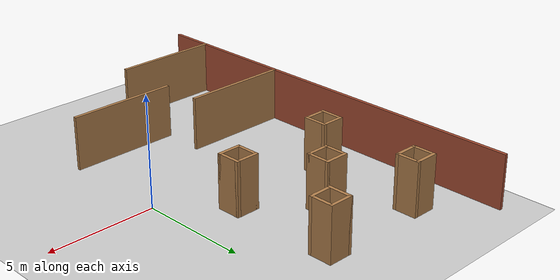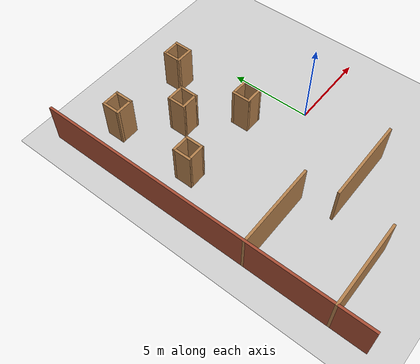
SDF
<sdf version="1.7">
 <world name="default">
  <model name="ground_plane">
   <static>1</static>
   <link name="link">
    <collision name="collision">
     <geometry><plane><normal>0 0 1</normal><size>100 100</size></plane></geometry>
     <surface>
      <contact><collide_bitmask>65535</collide_bitmask></contact>
      <friction><ode><mu>100</mu><mu2>50</mu2></ode></friction>
     </surface>
    </collision>
    <visual name="visual">
     <cast_shadows>0</cast_shadows>
     <geometry><plane><normal>0 0 1</normal><size>100 100</size></plane></geometry>
     <material>
      <script><uri>file://media/materials/scripts/gazebo.material</uri><name>Gazebo/Grey</name></script>
     </material>
    </visual>
   </link>
  </model>
  <model name="Room_Curriculum">
   <link name="Wall_18">
    <pose>-7.5 8 0 0 -0 0</pose>
    <visual name="Wall_18_Visual">
     <pose>0 0 1.25 0 -0 0</pose>
     <geometry><box><size>1.15 0.15 2.5</size></box></geometry>
     <material>
      <script><uri>file://media/materials/scripts/gazebo.material</uri><name>Gazebo/Wood</name></script>
      <ambient>1 1 1 1</ambient>
      <shader type="pixel"/>
     </material>
     <meta><layer>0</layer></meta>
    </visual>
    <collision name="Wall_18_Collision">
     <pose>0 0 1.25 0 -0 0</pose>
     <geometry><box><size>1.15 0.15 2.5</size></box></geometry>
     <surface>
      <friction>
       <ode><mu>1</mu><mu2>1</mu2><fdir1>0 0 0</fdir1><slip1>0</slip1><slip2>0</slip2></ode>
       <torsional>
        <coefficient>1</coefficient>
        <patch_radius>0</patch_radius>
        <surface_radius>0</surface_radius>
        <use_patch_radius>1</use_patch_radius>
        <ode><slip>0</slip></ode>
       </torsional>
      </friction>
      <bounce><restitution_coefficient>0</restitution_coefficient><threshold>1e+06</threshold></bounce>
      <contact>
       <collide_without_contact>0</collide_without_contact>
       <collide_without_contact_bitmask>1</collide_without_contact_bitmask>
       <collide_bitmask>1</collide_bitmask>
       <ode>
        <soft_cfm>0</soft_cfm>
        <soft_erp>0.2</soft_erp>
        <kp>1e+13</kp>
        <kd>1</kd>
        <max_vel>0.01</max_vel>
        <min_depth>0</min_depth>
       </ode>
       <bullet>
        <split_impulse>1</split_impulse>
        <split_impulse_penetration_threshold>-0.01</split_impulse_penetration_threshold>
        <soft_cfm>0</soft_cfm>
        <soft_erp>0.2</soft_erp>
        <kp>1e+13</kp>
        <kd>1</kd>
       </bullet>
      </contact>
     </surface>
    </collision>
   </link>
   <link name="Wall_19">
    <pose>-7 7.5 0 0 0 -1.5708</pose>
    <visual name="Wall_19_Visual">
     <pose>0 0 1.25 0 -0 0</pose>
     <geometry><box><size>1.15 0.15 2.5</size></box></geometry>
     <material>
      <script><uri>file://media/materials/scripts/gazebo.material</uri><name>Gazebo/Wood</name></script>
      <ambient>1 1 1 1</ambient>
      <shader type="pixel"/>
     </material>
     <meta><layer>0</layer></meta>
    </visual>
    <collision name="Wall_19_Collision">
     <pose>0 0 1.25 0 -0 0</pose>
     <geometry><box><size>1.15 0.15 2.5</size></box></geometry>
     <surface>
      <friction>
       <ode><mu>1</mu><mu2>1</mu2><fdir1>0 0 0</fdir1><slip1>0</slip1><slip2>0</slip2></ode>
       <torsional>
        <coefficient>1</coefficient>
        <patch_radius>0</patch_radius>
        <surface_radius>0</surface_radius>
        <use_patch_radius>1</use_patch_radius>
        <ode><slip>0</slip></ode>
       </torsional>
      </friction>
      <bounce><restitution_coefficient>0</restitution_coefficient><threshold>1e+06</threshold></bounce>
      <contact>
       <collide_without_contact>0</collide_without_contact>
       <collide_without_contact_bitmask>1</collide_without_contact_bitmask>
       <collide_bitmask>1</collide_bitmask>
       <ode>
        <soft_cfm>0</soft_cfm>
        <soft_erp>0.2</soft_erp>
        <kp>1e+13</kp>
        <kd>1</kd>
        <max_vel>0.01</max_vel>
        <min_depth>0</min_depth>
       </ode>
       <bullet>
        <split_impulse>1</split_impulse>
        <split_impulse_penetration_threshold>-0.01</split_impulse_penetration_threshold>
        <soft_cfm>0</soft_cfm>
        <soft_erp>0.2</soft_erp>
        <kp>1e+13</kp>
        <kd>1</kd>
       </bullet>
      </contact>
     </surface>
    </collision>
   </link>
   <link name="Wall_20">
    <pose>-7.5 7 0 0 -0 3.14159</pose>
    <visual name="Wall_20_Visual">
     <pose>0 0 1.25 0 -0 0</pose>
     <geometry><box><size>1.15 0.15 2.5</size></box></geometry>
     <material>
      <script><uri>file://media/materials/scripts/gazebo.material</uri><name>Gazebo/Wood</name></script>
      <ambient>1 1 1 1</ambient>
      <shader type="pixel"/>
     </material>
     <meta><layer>0</layer></meta>
    </visual>
    <collision name="Wall_20_Collision">
     <pose>0 0 1.25 0 -0 0</pose>
     <geometry><box><size>1.15 0.15 2.5</size></box></geometry>
     <surface>
      <friction>
       <ode><mu>1</mu><mu2>1</mu2><fdir1>0 0 0</fdir1><slip1>0</slip1><slip2>0</slip2></ode>
       <torsional>
        <coefficient>1</coefficient>
        <patch_radius>0</patch_radius>
        <surface_radius>0</surface_radius>
        <use_patch_radius>1</use_patch_radius>
        <ode><slip>0</slip></ode>
       </torsional>
      </friction>
      <bounce><restitution_coefficient>0</restitution_coefficient><threshold>1e+06</threshold></bounce>
      <contact>
       <collide_without_contact>0</collide_without_contact>
       <collide_without_contact_bitmask>1</collide_without_contact_bitmask>
       <collide_bitmask>1</collide_bitmask>
       <ode>
        <soft_cfm>0</soft_cfm>
        <soft_erp>0.2</soft_erp>
        <kp>1e+13</kp>
        <kd>1</kd>
        <max_vel>0.01</max_vel>
        <min_depth>0</min_depth>
       </ode>
       <bullet>
        <split_impulse>1</split_impulse>
        <split_impulse_penetration_threshold>-0.01</split_impulse_penetration_threshold>
        <soft_cfm>0</soft_cfm>
        <soft_erp>0.2</soft_erp>
        <kp>1e+13</kp>
        <kd>1</kd>
       </bullet>
      </contact>
     </surface>
    </collision>
   </link>
   <link name="Wall_21">
    <pose>-8 7.5 0 0 -0 1.5708</pose>
    <visual name="Wall_21_Visual">
     <pose>0 0 1.25 0 -0 0</pose>
     <geometry><box><size>1.15 0.15 2.5</size></box></geometry>
     <material>
      <script><uri>file://media/materials/scripts/gazebo.material</uri><name>Gazebo/Wood</name></script>
      <ambient>1 1 1 1</ambient>
      <shader type="pixel"/>
     </material>
     <meta><layer>0</layer></meta>
    </visual>
    <collision name="Wall_21_Collision">
     <pose>0 0 1.25 0 -0 0</pose>
     <geometry><box><size>1.15 0.15 2.5</size></box></geometry>
     <surface>
      <friction>
       <ode><mu>1</mu><mu2>1</mu2><fdir1>0 0 0</fdir1><slip1>0</slip1><slip2>0</slip2></ode>
       <torsional>
        <coefficient>1</coefficient>
        <patch_radius>0</patch_radius>
        <surface_radius>0</surface_radius>
        <use_patch_radius>1</use_patch_radius>
        <ode><slip>0</slip></ode>
       </torsional>
      </friction>
      <bounce><restitution_coefficient>0</restitution_coefficient><threshold>1e+06</threshold></bounce>
      <contact>
       <collide_without_contact>0</collide_without_contact>
       <collide_without_contact_bitmask>1</collide_without_contact_bitmask>
       <collide_bitmask>1</collide_bitmask>
       <ode>
        <soft_cfm>0</soft_cfm>
        <soft_erp>0.2</soft_erp>
        <kp>1e+13</kp>
        <kd>1</kd>
        <max_vel>0.01</max_vel>
        <min_depth>0</min_depth>
       </ode>
       <bullet>
        <split_impulse>1</split_impulse>
        <split_impulse_penetration_threshold>-0.01</split_impulse_penetration_threshold>
        <soft_cfm>0</soft_cfm>
        <soft_erp>0.2</soft_erp>
        <kp>1e+13</kp>
        <kd>1</kd>
       </bullet>
      </contact>
     </surface>
    </collision>
   </link>
   <link name="Wall_23">
    <pose>-5.5 5 0 0 0 -1.5708</pose>
    <visual name="Wall_23_Visual">
     <pose>0 0 1.25 0 -0 0</pose>
     <geometry><box><size>1.15 0.15 2.5</size></box></geometry>
     <material>
      <script><uri>file://media/materials/scripts/gazebo.material</uri><name>Gazebo/Wood</name></script>
      <ambient>1 1 1 1</ambient>
      <shader type="pixel"/>
     </material>
     <meta><layer>0</layer></meta>
    </visual>
    <collision name="Wall_23_Collision">
     <pose>0 0 1.25 0 -0 0</pose>
     <geometry><box><size>1.15 0.15 2.5</size></box></geometry>
     <surface>
      <friction>
       <ode><mu>1</mu><mu2>1</mu2><fdir1>0 0 0</fdir1><slip1>0</slip1><slip2>0</slip2></ode>
       <torsional>
        <coefficient>1</coefficient>
        <patch_radius>0</patch_radius>
        <surface_radius>0</surface_radius>
        <use_patch_radius>1</use_patch_radius>
        <ode><slip>0</slip></ode>
       </torsional>
      </friction>
      <bounce><restitution_coefficient>0</restitution_coefficient><threshold>1e+06</threshold></bounce>
      <contact>
       <collide_without_contact>0</collide_without_contact>
       <collide_without_contact_bitmask>1</collide_without_contact_bitmask>
       <collide_bitmask>1</collide_bitmask>
       <ode>
        <soft_cfm>0</soft_cfm>
        <soft_erp>0.2</soft_erp>
        <kp>1e+13</kp>
        <kd>1</kd>
        <max_vel>0.01</max_vel>
        <min_depth>0</min_depth>
       </ode>
       <bullet>
        <split_impulse>1</split_impulse>
        <split_impulse_penetration_threshold>-0.01</split_impulse_penetration_threshold>
        <soft_cfm>0</soft_cfm>
        <soft_erp>0.2</soft_erp>
        <kp>1e+13</kp>
        <kd>1</kd>
       </bullet>
      </contact>
     </surface>
    </collision>
   </link>
   <link name="Wall_24">
    <pose>-5 4.5 0 0 -0 0</pose>
    <visual name="Wall_24_Visual">
     <pose>0 0 1.25 0 -0 0</pose>
     <geometry><box><size>1.15 0.15 2.5</size></box></geometry>
     <material>
      <script><uri>file://media/materials/scripts/gazebo.material</uri><name>Gazebo/Wood</name></script>
      <ambient>1 1 1 1</ambient>
      <shader type="pixel"/>
     </material>
     <meta><layer>0</layer></meta>
    </visual>
    <collision name="Wall_24_Collision">
     <pose>0 0 1.25 0 -0 0</pose>
     <geometry><box><size>1.15 0.15 2.5</size></box></geometry>
     <surface>
      <friction>
       <ode><mu>1</mu><mu2>1</mu2><fdir1>0 0 0</fdir1><slip1>0</slip1><slip2>0</slip2></ode>
       <torsional>
        <coefficient>1</coefficient>
        <patch_radius>0</patch_radius>
        <surface_radius>0</surface_radius>
        <use_patch_radius>1</use_patch_radius>
        <ode><slip>0</slip></ode>
       </torsional>
      </friction>
      <bounce><restitution_coefficient>0</restitution_coefficient><threshold>1e+06</threshold></bounce>
      <contact>
       <collide_without_contact>0</collide_without_contact>
       <collide_without_contact_bitmask>1</collide_without_contact_bitmask>
       <collide_bitmask>1</collide_bitmask>
       <ode>
        <soft_cfm>0</soft_cfm>
        <soft_erp>0.2</soft_erp>
        <kp>1e+13</kp>
        <kd>1</kd>
        <max_vel>0.01</max_vel>
        <min_depth>0</min_depth>
       </ode>
       <bullet>
        <split_impulse>1</split_impulse>
        <split_impulse_penetration_threshold>-0.01</split_impulse_penetration_threshold>
        <soft_cfm>0</soft_cfm>
        <soft_erp>0.2</soft_erp>
        <kp>1e+13</kp>
        <kd>1</kd>
       </bullet>
      </contact>
     </surface>
    </collision>
   </link>
   <link name="Wall_25">
    <pose>-4.5 5 0 0 -0 1.5708</pose>
    <visual name="Wall_25_Visual">
     <pose>0 0 1.25 0 -0 0</pose>
     <geometry><box><size>1.15 0.15 2.5</size></box></geometry>
     <material>
      <script><uri>file://media/materials/scripts/gazebo.material</uri><name>Gazebo/Wood</name></script>
      <ambient>1 1 1 1</ambient>
      <shader type="pixel"/>
     </material>
     <meta><layer>0</layer></meta>
    </visual>
    <collision name="Wall_25_Collision">
     <pose>0 0 1.25 0 -0 0</pose>
     <geometry><box><size>1.15 0.15 2.5</size></box></geometry>
     <surface>
      <friction>
       <ode><mu>1</mu><mu2>1</mu2><fdir1>0 0 0</fdir1><slip1>0</slip1><slip2>0</slip2></ode>
       <torsional>
        <coefficient>1</coefficient>
        <patch_radius>0</patch_radius>
        <surface_radius>0</surface_radius>
        <use_patch_radius>1</use_patch_radius>
        <ode><slip>0</slip></ode>
       </torsional>
      </friction>
      <bounce><restitution_coefficient>0</restitution_coefficient><threshold>1e+06</threshold></bounce>
      <contact>
       <collide_without_contact>0</collide_without_contact>
       <collide_without_contact_bitmask>1</collide_without_contact_bitmask>
       <collide_bitmask>1</collide_bitmask>
       <ode>
        <soft_cfm>0</soft_cfm>
        <soft_erp>0.2</soft_erp>
        <kp>1e+13</kp>
        <kd>1</kd>
        <max_vel>0.01</max_vel>
        <min_depth>0</min_depth>
       </ode>
       <bullet>
        <split_impulse>1</split_impulse>
        <split_impulse_penetration_threshold>-0.01</split_impulse_penetration_threshold>
        <soft_cfm>0</soft_cfm>
        <soft_erp>0.2</soft_erp>
        <kp>1e+13</kp>
        <kd>1</kd>
       </bullet>
      </contact>
     </surface>
    </collision>
   </link>
   <link name="Wall_26">
    <pose>-5 5.5 0 0 -0 3.14159</pose>
    <visual name="Wall_26_Visual">
     <pose>0 0 1.25 0 -0 0</pose>
     <geometry><box><size>1.15 0.15 2.5</size></box></geometry>
     <material>
      <script><uri>file://media/materials/scripts/gazebo.material</uri><name>Gazebo/Wood</name></script>
      <ambient>1 1 1 1</ambient>
      <shader type="pixel"/>
     </material>
     <meta><layer>0</layer></meta>
    </visual>
    <collision name="Wall_26_Collision">
     <pose>0 0 1.25 0 -0 0</pose>
     <geometry><box><size>1.15 0.15 2.5</size></box></geometry>
     <surface>
      <friction>
       <ode><mu>1</mu><mu2>1</mu2><fdir1>0 0 0</fdir1><slip1>0</slip1><slip2>0</slip2></ode>
       <torsional>
        <coefficient>1</coefficient>
        <patch_radius>0</patch_radius>
        <surface_radius>0</surface_radius>
        <use_patch_radius>1</use_patch_radius>
        <ode><slip>0</slip></ode>
       </torsional>
      </friction>
      <bounce><restitution_coefficient>0</restitution_coefficient><threshold>1e+06</threshold></bounce>
      <contact>
       <collide_without_contact>0</collide_without_contact>
       <collide_without_contact_bitmask>1</collide_without_contact_bitmask>
       <collide_bitmask>1</collide_bitmask>
       <ode>
        <soft_cfm>0</soft_cfm>
        <soft_erp>0.2</soft_erp>
        <kp>1e+13</kp>
        <kd>1</kd>
        <max_vel>0.01</max_vel>
        <min_depth>0</min_depth>
       </ode>
       <bullet>
        <split_impulse>1</split_impulse>
        <split_impulse_penetration_threshold>-0.01</split_impulse_penetration_threshold>
        <soft_cfm>0</soft_cfm>
        <soft_erp>0.2</soft_erp>
        <kp>1e+13</kp>
        <kd>1</kd>
       </bullet>
      </contact>
     </surface>
    </collision>
   </link>
   <link name="Wall_28">
    <pose>-2.5 8 0 0 -0 0</pose>
    <visual name="Wall_28_Visual">
     <pose>0 0 1.25 0 -0 0</pose>
     <geometry><box><size>1.15 0.15 2.5</size></box></geometry>
     <material>
      <script><uri>file://media/materials/scripts/gazebo.material</uri><name>Gazebo/Wood</name></script>
      <ambient>1 1 1 1</ambient>
      <shader type="pixel"/>
     </material>
     <meta><layer>0</layer></meta>
    </visual>
    <collision name="Wall_28_Collision">
     <pose>0 0 1.25 0 -0 0</pose>
     <geometry><box><size>1.15 0.15 2.5</size></box></geometry>
     <surface>
      <friction>
       <ode><mu>1</mu><mu2>1</mu2><fdir1>0 0 0</fdir1><slip1>0</slip1><slip2>0</slip2></ode>
       <torsional>
        <coefficient>1</coefficient>
        <patch_radius>0</patch_radius>
        <surface_radius>0</surface_radius>
        <use_patch_radius>1</use_patch_radius>
        <ode><slip>0</slip></ode>
       </torsional>
      </friction>
      <bounce><restitution_coefficient>0</restitution_coefficient><threshold>1e+06</threshold></bounce>
      <contact>
       <collide_without_contact>0</collide_without_contact>
       <collide_without_contact_bitmask>1</collide_without_contact_bitmask>
       <collide_bitmask>1</collide_bitmask>
       <ode>
        <soft_cfm>0</soft_cfm>
        <soft_erp>0.2</soft_erp>
        <kp>1e+13</kp>
        <kd>1</kd>
        <max_vel>0.01</max_vel>
        <min_depth>0</min_depth>
       </ode>
       <bullet>
        <split_impulse>1</split_impulse>
        <split_impulse_penetration_threshold>-0.01</split_impulse_penetration_threshold>
        <soft_cfm>0</soft_cfm>
        <soft_erp>0.2</soft_erp>
        <kp>1e+13</kp>
        <kd>1</kd>
       </bullet>
      </contact>
     </surface>
    </collision>
   </link>
   <link name="Wall_29">
    <pose>-2 7.5 0 0 0 -1.5708</pose>
    <visual name="Wall_29_Visual">
     <pose>0 0 1.25 0 -0 0</pose>
     <geometry><box><size>1.15 0.15 2.5</size></box></geometry>
     <material>
      <script><uri>file://media/materials/scripts/gazebo.material</uri><name>Gazebo/Wood</name></script>
      <ambient>1 1 1 1</ambient>
      <shader type="pixel"/>
     </material>
     <meta><layer>0</layer></meta>
    </visual>
    <collision name="Wall_29_Collision">
     <pose>0 0 1.25 0 -0 0</pose>
     <geometry><box><size>1.15 0.15 2.5</size></box></geometry>
     <surface>
      <friction>
       <ode><mu>1</mu><mu2>1</mu2><fdir1>0 0 0</fdir1><slip1>0</slip1><slip2>0</slip2></ode>
       <torsional>
        <coefficient>1</coefficient>
        <patch_radius>0</patch_radius>
        <surface_radius>0</surface_radius>
        <use_patch_radius>1</use_patch_radius>
        <ode><slip>0</slip></ode>
       </torsional>
      </friction>
      <bounce><restitution_coefficient>0</restitution_coefficient><threshold>1e+06</threshold></bounce>
      <contact>
       <collide_without_contact>0</collide_without_contact>
       <collide_without_contact_bitmask>1</collide_without_contact_bitmask>
       <collide_bitmask>1</collide_bitmask>
       <ode>
        <soft_cfm>0</soft_cfm>
        <soft_erp>0.2</soft_erp>
        <kp>1e+13</kp>
        <kd>1</kd>
        <max_vel>0.01</max_vel>
        <min_depth>0</min_depth>
       </ode>
       <bullet>
        <split_impulse>1</split_impulse>
        <split_impulse_penetration_threshold>-0.01</split_impulse_penetration_threshold>
        <soft_cfm>0</soft_cfm>
        <soft_erp>0.2</soft_erp>
        <kp>1e+13</kp>
        <kd>1</kd>
       </bullet>
      </contact>
     </surface>
    </collision>
   </link>
   <link name="Wall_3">
    <pose>-10 0 0 0 -0 1.5708</pose>
    <visual name="Wall_3_Visual">
     <pose>0 0 1.25 0 -0 0</pose>
     <geometry><box><size>20.15 0.15 2.5</size></box></geometry>
     <material>
      <script><uri>file://media/materials/scripts/gazebo.material</uri><name>Gazebo/Bricks</name></script>
      <ambient>1 1 1 1</ambient>
      <shader type="pixel"/>
     </material>
     <meta><layer>0</layer></meta>
    </visual>
    <collision name="Wall_3_Collision">
     <pose>0 0 1.25 0 -0 0</pose>
     <geometry><box><size>20.15 0.15 2.5</size></box></geometry>
     <surface>
      <friction>
       <ode><mu>1</mu><mu2>1</mu2><fdir1>0 0 0</fdir1><slip1>0</slip1><slip2>0</slip2></ode>
       <torsional>
        <coefficient>1</coefficient>
        <patch_radius>0</patch_radius>
        <surface_radius>0</surface_radius>
        <use_patch_radius>1</use_patch_radius>
        <ode><slip>0</slip></ode>
       </torsional>
      </friction>
      <bounce><restitution_coefficient>0</restitution_coefficient><threshold>1e+06</threshold></bounce>
      <contact>
       <collide_without_contact>0</collide_without_contact>
       <collide_without_contact_bitmask>1</collide_without_contact_bitmask>
       <collide_bitmask>1</collide_bitmask>
       <ode>
        <soft_cfm>0</soft_cfm>
        <soft_erp>0.2</soft_erp>
        <kp>1e+13</kp>
        <kd>1</kd>
        <max_vel>0.01</max_vel>
        <min_depth>0</min_depth>
       </ode>
       <bullet>
        <split_impulse>1</split_impulse>
        <split_impulse_penetration_threshold>-0.01</split_impulse_penetration_threshold>
        <soft_cfm>0</soft_cfm>
        <soft_erp>0.2</soft_erp>
        <kp>1e+13</kp>
        <kd>1</kd>
       </bullet>
      </contact>
     </surface>
    </collision>
   </link>
   <link name="Wall_30">
    <pose>-2.5 7 0 0 -0 3.14159</pose>
    <visual name="Wall_30_Visual">
     <pose>0 0 1.25 0 -0 0</pose>
     <geometry><box><size>1.15 0.15 2.5</size></box></geometry>
     <material>
      <script><uri>file://media/materials/scripts/gazebo.material</uri><name>Gazebo/Wood</name></script>
      <ambient>1 1 1 1</ambient>
      <shader type="pixel"/>
     </material>
     <meta><layer>0</layer></meta>
    </visual>
    <collision name="Wall_30_Collision">
     <pose>0 0 1.25 0 -0 0</pose>
     <geometry><box><size>1.15 0.15 2.5</size></box></geometry>
     <surface>
      <friction>
       <ode><mu>1</mu><mu2>1</mu2><fdir1>0 0 0</fdir1><slip1>0</slip1><slip2>0</slip2></ode>
       <torsional>
        <coefficient>1</coefficient>
        <patch_radius>0</patch_radius>
        <surface_radius>0</surface_radius>
        <use_patch_radius>1</use_patch_radius>
        <ode><slip>0</slip></ode>
       </torsional>
      </friction>
      <bounce><restitution_coefficient>0</restitution_coefficient><threshold>1e+06</threshold></bounce>
      <contact>
       <collide_without_contact>0</collide_without_contact>
       <collide_without_contact_bitmask>1</collide_without_contact_bitmask>
       <collide_bitmask>1</collide_bitmask>
       <ode>
        <soft_cfm>0</soft_cfm>
        <soft_erp>0.2</soft_erp>
        <kp>1e+13</kp>
        <kd>1</kd>
        <max_vel>0.01</max_vel>
        <min_depth>0</min_depth>
       </ode>
       <bullet>
        <split_impulse>1</split_impulse>
        <split_impulse_penetration_threshold>-0.01</split_impulse_penetration_threshold>
        <soft_cfm>0</soft_cfm>
        <soft_erp>0.2</soft_erp>
        <kp>1e+13</kp>
        <kd>1</kd>
       </bullet>
      </contact>
     </surface>
    </collision>
   </link>
   <link name="Wall_31">
    <pose>-3 7.5 0 0 -0 1.5708</pose>
    <visual name="Wall_31_Visual">
     <pose>0 0 1.25 0 -0 0</pose>
     <geometry><box><size>1.15 0.15 2.5</size></box></geometry>
     <material>
      <script><uri>file://media/materials/scripts/gazebo.material</uri><name>Gazebo/Wood</name></script>
      <ambient>1 1 1 1</ambient>
      <shader type="pixel"/>
     </material>
     <meta><layer>0</layer></meta>
    </visual>
    <collision name="Wall_31_Collision">
     <pose>0 0 1.25 0 -0 0</pose>
     <geometry><box><size>1.15 0.15 2.5</size></box></geometry>
     <surface>
      <friction>
       <ode><mu>1</mu><mu2>1</mu2><fdir1>0 0 0</fdir1><slip1>0</slip1><slip2>0</slip2></ode>
       <torsional>
        <coefficient>1</coefficient>
        <patch_radius>0</patch_radius>
        <surface_radius>0</surface_radius>
        <use_patch_radius>1</use_patch_radius>
        <ode><slip>0</slip></ode>
       </torsional>
      </friction>
      <bounce><restitution_coefficient>0</restitution_coefficient><threshold>1e+06</threshold></bounce>
      <contact>
       <collide_without_contact>0</collide_without_contact>
       <collide_without_contact_bitmask>1</collide_without_contact_bitmask>
       <collide_bitmask>1</collide_bitmask>
       <ode>
        <soft_cfm>0</soft_cfm>
        <soft_erp>0.2</soft_erp>
        <kp>1e+13</kp>
        <kd>1</kd>
        <max_vel>0.01</max_vel>
        <min_depth>0</min_depth>
       </ode>
       <bullet>
        <split_impulse>1</split_impulse>
        <split_impulse_penetration_threshold>-0.01</split_impulse_penetration_threshold>
        <soft_cfm>0</soft_cfm>
        <soft_erp>0.2</soft_erp>
        <kp>1e+13</kp>
        <kd>1</kd>
       </bullet>
      </contact>
     </surface>
    </collision>
   </link>
   <link name="Wall_33">
    <pose>-8 2.5 0 0 0 -1.5708</pose>
    <visual name="Wall_33_Visual">
     <pose>0 0 1.25 0 -0 0</pose>
     <geometry><box><size>1.15 0.15 2.5</size></box></geometry>
     <material>
      <script><uri>file://media/materials/scripts/gazebo.material</uri><name>Gazebo/Wood</name></script>
      <ambient>1 1 1 1</ambient>
      <shader type="pixel"/>
     </material>
     <meta><layer>0</layer></meta>
    </visual>
    <collision name="Wall_33_Collision">
     <pose>0 0 1.25 0 -0 0</pose>
     <geometry><box><size>1.15 0.15 2.5</size></box></geometry>
     <surface>
      <friction>
       <ode><mu>1</mu><mu2>1</mu2><fdir1>0 0 0</fdir1><slip1>0</slip1><slip2>0</slip2></ode>
       <torsional>
        <coefficient>1</coefficient>
        <patch_radius>0</patch_radius>
        <surface_radius>0</surface_radius>
        <use_patch_radius>1</use_patch_radius>
        <ode><slip>0</slip></ode>
       </torsional>
      </friction>
      <bounce><restitution_coefficient>0</restitution_coefficient><threshold>1e+06</threshold></bounce>
      <contact>
       <collide_without_contact>0</collide_without_contact>
       <collide_without_contact_bitmask>1</collide_without_contact_bitmask>
       <collide_bitmask>1</collide_bitmask>
       <ode>
        <soft_cfm>0</soft_cfm>
        <soft_erp>0.2</soft_erp>
        <kp>1e+13</kp>
        <kd>1</kd>
        <max_vel>0.01</max_vel>
        <min_depth>0</min_depth>
       </ode>
       <bullet>
        <split_impulse>1</split_impulse>
        <split_impulse_penetration_threshold>-0.01</split_impulse_penetration_threshold>
        <soft_cfm>0</soft_cfm>
        <soft_erp>0.2</soft_erp>
        <kp>1e+13</kp>
        <kd>1</kd>
       </bullet>
      </contact>
     </surface>
    </collision>
   </link>
   <link name="Wall_34">
    <pose>-7.5 2 0 0 -0 0</pose>
    <visual name="Wall_34_Visual">
     <pose>0 0 1.25 0 -0 0</pose>
     <geometry><box><size>1.15 0.15 2.5</size></box></geometry>
     <material>
      <script><uri>file://media/materials/scripts/gazebo.material</uri><name>Gazebo/Wood</name></script>
      <ambient>1 1 1 1</ambient>
      <shader type="pixel"/>
     </material>
     <meta><layer>0</layer></meta>
    </visual>
    <collision name="Wall_34_Collision">
     <pose>0 0 1.25 0 -0 0</pose>
     <geometry><box><size>1.15 0.15 2.5</size></box></geometry>
     <surface>
      <friction>
       <ode><mu>1</mu><mu2>1</mu2><fdir1>0 0 0</fdir1><slip1>0</slip1><slip2>0</slip2></ode>
       <torsional>
        <coefficient>1</coefficient>
        <patch_radius>0</patch_radius>
        <surface_radius>0</surface_radius>
        <use_patch_radius>1</use_patch_radius>
        <ode><slip>0</slip></ode>
       </torsional>
      </friction>
      <bounce><restitution_coefficient>0</restitution_coefficient><threshold>1e+06</threshold></bounce>
      <contact>
       <collide_without_contact>0</collide_without_contact>
       <collide_without_contact_bitmask>1</collide_without_contact_bitmask>
       <collide_bitmask>1</collide_bitmask>
       <ode>
        <soft_cfm>0</soft_cfm>
        <soft_erp>0.2</soft_erp>
        <kp>1e+13</kp>
        <kd>1</kd>
        <max_vel>0.01</max_vel>
        <min_depth>0</min_depth>
       </ode>
       <bullet>
        <split_impulse>1</split_impulse>
        <split_impulse_penetration_threshold>-0.01</split_impulse_penetration_threshold>
        <soft_cfm>0</soft_cfm>
        <soft_erp>0.2</soft_erp>
        <kp>1e+13</kp>
        <kd>1</kd>
       </bullet>
      </contact>
     </surface>
    </collision>
   </link>
   <link name="Wall_35">
    <pose>-7 2.5 0 0 -0 1.5708</pose>
    <visual name="Wall_35_Visual">
     <pose>0 0 1.25 0 -0 0</pose>
     <geometry><box><size>1.15 0.15 2.5</size></box></geometry>
     <material>
      <script><uri>file://media/materials/scripts/gazebo.material</uri><name>Gazebo/Wood</name></script>
      <ambient>1 1 1 1</ambient>
      <shader type="pixel"/>
     </material>
     <meta><layer>0</layer></meta>
    </visual>
    <collision name="Wall_35_Collision">
     <pose>0 0 1.25 0 -0 0</pose>
     <geometry><box><size>1.15 0.15 2.5</size></box></geometry>
     <surface>
      <friction>
       <ode><mu>1</mu><mu2>1</mu2><fdir1>0 0 0</fdir1><slip1>0</slip1><slip2>0</slip2></ode>
       <torsional>
        <coefficient>1</coefficient>
        <patch_radius>0</patch_radius>
        <surface_radius>0</surface_radius>
        <use_patch_radius>1</use_patch_radius>
        <ode><slip>0</slip></ode>
       </torsional>
      </friction>
      <bounce><restitution_coefficient>0</restitution_coefficient><threshold>1e+06</threshold></bounce>
      <contact>
       <collide_without_contact>0</collide_without_contact>
       <collide_without_contact_bitmask>1</collide_without_contact_bitmask>
       <collide_bitmask>1</collide_bitmask>
       <ode>
        <soft_cfm>0</soft_cfm>
        <soft_erp>0.2</soft_erp>
        <kp>1e+13</kp>
        <kd>1</kd>
        <max_vel>0.01</max_vel>
        <min_depth>0</min_depth>
       </ode>
       <bullet>
        <split_impulse>1</split_impulse>
        <split_impulse_penetration_threshold>-0.01</split_impulse_penetration_threshold>
        <soft_cfm>0</soft_cfm>
        <soft_erp>0.2</soft_erp>
        <kp>1e+13</kp>
        <kd>1</kd>
       </bullet>
      </contact>
     </surface>
    </collision>
   </link>
   <link name="Wall_36">
    <pose>-7.5 3 0 0 -0 3.14159</pose>
    <visual name="Wall_36_Visual">
     <pose>0 0 1.25 0 -0 0</pose>
     <geometry><box><size>1.15 0.15 2.5</size></box></geometry>
     <material>
      <script><uri>file://media/materials/scripts/gazebo.material</uri><name>Gazebo/Wood</name></script>
      <ambient>1 1 1 1</ambient>
      <shader type="pixel"/>
     </material>
     <meta><layer>0</layer></meta>
    </visual>
    <collision name="Wall_36_Collision">
     <pose>0 0 1.25 0 -0 0</pose>
     <geometry><box><size>1.15 0.15 2.5</size></box></geometry>
     <surface>
      <friction>
       <ode><mu>1</mu><mu2>1</mu2><fdir1>0 0 0</fdir1><slip1>0</slip1><slip2>0</slip2></ode>
       <torsional>
        <coefficient>1</coefficient>
        <patch_radius>0</patch_radius>
        <surface_radius>0</surface_radius>
        <use_patch_radius>1</use_patch_radius>
        <ode><slip>0</slip></ode>
       </torsional>
      </friction>
      <bounce><restitution_coefficient>0</restitution_coefficient><threshold>1e+06</threshold></bounce>
      <contact>
       <collide_without_contact>0</collide_without_contact>
       <collide_without_contact_bitmask>1</collide_without_contact_bitmask>
       <collide_bitmask>1</collide_bitmask>
       <ode>
        <soft_cfm>0</soft_cfm>
        <soft_erp>0.2</soft_erp>
        <kp>1e+13</kp>
        <kd>1</kd>
        <max_vel>0.01</max_vel>
        <min_depth>0</min_depth>
       </ode>
       <bullet>
        <split_impulse>1</split_impulse>
        <split_impulse_penetration_threshold>-0.01</split_impulse_penetration_threshold>
        <soft_cfm>0</soft_cfm>
        <soft_erp>0.2</soft_erp>
        <kp>1e+13</kp>
        <kd>1</kd>
       </bullet>
      </contact>
     </surface>
    </collision>
   </link>
   <link name="Wall_38">
    <pose>-3 2.5 0 0 0 -1.5708</pose>
    <visual name="Wall_38_Visual">
     <pose>0 0 1.25 0 -0 0</pose>
     <geometry><box><size>1.15 0.15 2.5</size></box></geometry>
     <material>
      <script><uri>file://media/materials/scripts/gazebo.material</uri><name>Gazebo/Wood</name></script>
      <ambient>1 1 1 1</ambient>
      <shader type="pixel"/>
     </material>
     <meta><layer>0</layer></meta>
    </visual>
    <collision name="Wall_38_Collision">
     <pose>0 0 1.25 0 -0 0</pose>
     <geometry><box><size>1.15 0.15 2.5</size></box></geometry>
     <surface>
      <friction>
       <ode><mu>1</mu><mu2>1</mu2><fdir1>0 0 0</fdir1><slip1>0</slip1><slip2>0</slip2></ode>
       <torsional>
        <coefficient>1</coefficient>
        <patch_radius>0</patch_radius>
        <surface_radius>0</surface_radius>
        <use_patch_radius>1</use_patch_radius>
        <ode><slip>0</slip></ode>
       </torsional>
      </friction>
      <bounce><restitution_coefficient>0</restitution_coefficient><threshold>1e+06</threshold></bounce>
      <contact>
       <collide_without_contact>0</collide_without_contact>
       <collide_without_contact_bitmask>1</collide_without_contact_bitmask>
       <collide_bitmask>1</collide_bitmask>
       <ode>
        <soft_cfm>0</soft_cfm>
        <soft_erp>0.2</soft_erp>
        <kp>1e+13</kp>
        <kd>1</kd>
        <max_vel>0.01</max_vel>
        <min_depth>0</min_depth>
       </ode>
       <bullet>
        <split_impulse>1</split_impulse>
        <split_impulse_penetration_threshold>-0.01</split_impulse_penetration_threshold>
        <soft_cfm>0</soft_cfm>
        <soft_erp>0.2</soft_erp>
        <kp>1e+13</kp>
        <kd>1</kd>
       </bullet>
      </contact>
     </surface>
    </collision>
   </link>
   <link name="Wall_39">
    <pose>-2.5 2 0 0 -0 0</pose>
    <visual name="Wall_39_Visual">
     <pose>0 0 1.25 0 -0 0</pose>
     <geometry><box><size>1.15 0.15 2.5</size></box></geometry>
     <material>
      <script><uri>file://media/materials/scripts/gazebo.material</uri><name>Gazebo/Wood</name></script>
      <ambient>1 1 1 1</ambient>
      <shader type="pixel"/>
     </material>
     <meta><layer>0</layer></meta>
    </visual>
    <collision name="Wall_39_Collision">
     <pose>0 0 1.25 0 -0 0</pose>
     <geometry><box><size>1.15 0.15 2.5</size></box></geometry>
     <surface>
      <friction>
       <ode><mu>1</mu><mu2>1</mu2><fdir1>0 0 0</fdir1><slip1>0</slip1><slip2>0</slip2></ode>
       <torsional>
        <coefficient>1</coefficient>
        <patch_radius>0</patch_radius>
        <surface_radius>0</surface_radius>
        <use_patch_radius>1</use_patch_radius>
        <ode><slip>0</slip></ode>
       </torsional>
      </friction>
      <bounce><restitution_coefficient>0</restitution_coefficient><threshold>1e+06</threshold></bounce>
      <contact>
       <collide_without_contact>0</collide_without_contact>
       <collide_without_contact_bitmask>1</collide_without_contact_bitmask>
       <collide_bitmask>1</collide_bitmask>
       <ode>
        <soft_cfm>0</soft_cfm>
        <soft_erp>0.2</soft_erp>
        <kp>1e+13</kp>
        <kd>1</kd>
        <max_vel>0.01</max_vel>
        <min_depth>0</min_depth>
       </ode>
       <bullet>
        <split_impulse>1</split_impulse>
        <split_impulse_penetration_threshold>-0.01</split_impulse_penetration_threshold>
        <soft_cfm>0</soft_cfm>
        <soft_erp>0.2</soft_erp>
        <kp>1e+13</kp>
        <kd>1</kd>
       </bullet>
      </contact>
     </surface>
    </collision>
   </link>
   <link name="Wall_40">
    <pose>-2 2.5 0 0 -0 1.5708</pose>
    <visual name="Wall_40_Visual">
     <pose>0 0 1.25 0 -0 0</pose>
     <geometry><box><size>1.15 0.15 2.5</size></box></geometry>
     <material>
      <script><uri>file://media/materials/scripts/gazebo.material</uri><name>Gazebo/Wood</name></script>
      <ambient>1 1 1 1</ambient>
      <shader type="pixel"/>
     </material>
     <meta><layer>0</layer></meta>
    </visual>
    <collision name="Wall_40_Collision">
     <pose>0 0 1.25 0 -0 0</pose>
     <geometry><box><size>1.15 0.15 2.5</size></box></geometry>
     <surface>
      <friction>
       <ode><mu>1</mu><mu2>1</mu2><fdir1>0 0 0</fdir1><slip1>0</slip1><slip2>0</slip2></ode>
       <torsional>
        <coefficient>1</coefficient>
        <patch_radius>0</patch_radius>
        <surface_radius>0</surface_radius>
        <use_patch_radius>1</use_patch_radius>
        <ode><slip>0</slip></ode>
       </torsional>
      </friction>
      <bounce><restitution_coefficient>0</restitution_coefficient><threshold>1e+06</threshold></bounce>
      <contact>
       <collide_without_contact>0</collide_without_contact>
       <collide_without_contact_bitmask>1</collide_without_contact_bitmask>
       <collide_bitmask>1</collide_bitmask>
       <ode>
        <soft_cfm>0</soft_cfm>
        <soft_erp>0.2</soft_erp>
        <kp>1e+13</kp>
        <kd>1</kd>
        <max_vel>0.01</max_vel>
        <min_depth>0</min_depth>
       </ode>
       <bullet>
        <split_impulse>1</split_impulse>
        <split_impulse_penetration_threshold>-0.01</split_impulse_penetration_threshold>
        <soft_cfm>0</soft_cfm>
        <soft_erp>0.2</soft_erp>
        <kp>1e+13</kp>
        <kd>1</kd>
       </bullet>
      </contact>
     </surface>
    </collision>
   </link>
   <link name="Wall_41">
    <pose>-2.5 3 0 0 -0 3.14159</pose>
    <visual name="Wall_41_Visual">
     <pose>0 0 1.25 0 -0 0</pose>
     <geometry><box><size>1.15 0.15 2.5</size></box></geometry>
     <material>
      <script><uri>file://media/materials/scripts/gazebo.material</uri><name>Gazebo/Wood</name></script>
      <ambient>1 1 1 1</ambient>
      <shader type="pixel"/>
     </material>
     <meta><layer>0</layer></meta>
    </visual>
    <collision name="Wall_41_Collision">
     <pose>0 0 1.25 0 -0 0</pose>
     <geometry><box><size>1.15 0.15 2.5</size></box></geometry>
     <surface>
      <friction>
       <ode><mu>1</mu><mu2>1</mu2><fdir1>0 0 0</fdir1><slip1>0</slip1><slip2>0</slip2></ode>
       <torsional>
        <coefficient>1</coefficient>
        <patch_radius>0</patch_radius>
        <surface_radius>0</surface_radius>
        <use_patch_radius>1</use_patch_radius>
        <ode><slip>0</slip></ode>
       </torsional>
      </friction>
      <bounce><restitution_coefficient>0</restitution_coefficient><threshold>1e+06</threshold></bounce>
      <contact>
       <collide_without_contact>0</collide_without_contact>
       <collide_without_contact_bitmask>1</collide_without_contact_bitmask>
       <collide_bitmask>1</collide_bitmask>
       <ode>
        <soft_cfm>0</soft_cfm>
        <soft_erp>0.2</soft_erp>
        <kp>1e+13</kp>
        <kd>1</kd>
        <max_vel>0.01</max_vel>
        <min_depth>0</min_depth>
       </ode>
       <bullet>
        <split_impulse>1</split_impulse>
        <split_impulse_penetration_threshold>-0.01</split_impulse_penetration_threshold>
        <soft_cfm>0</soft_cfm>
        <soft_erp>0.2</soft_erp>
        <kp>1e+13</kp>
        <kd>1</kd>
       </bullet>
      </contact>
     </surface>
    </collision>
   </link>
   <link name="Wall_43">
    <pose>-7.5 -3 0 0 -0 0</pose>
    <visual name="Wall_43_Visual">
     <pose>0 0 1.25 0 -0 0</pose>
     <geometry><box><size>5.15 0.15 2.5</size></box></geometry>
     <material>
      <script><uri>file://media/materials/scripts/gazebo.material</uri><name>Gazebo/Wood</name></script>
      <ambient>1 1 1 1</ambient>
      <shader type="pixel"/>
     </material>
     <meta><layer>0</layer></meta>
    </visual>
    <collision name="Wall_43_Collision">
     <pose>0 0 1.25 0 -0 0</pose>
     <geometry><box><size>5.15 0.15 2.5</size></box></geometry>
     <surface>
      <friction>
       <ode><mu>1</mu><mu2>1</mu2><fdir1>0 0 0</fdir1><slip1>0</slip1><slip2>0</slip2></ode>
       <torsional>
        <coefficient>1</coefficient>
        <patch_radius>0</patch_radius>
        <surface_radius>0</surface_radius>
        <use_patch_radius>1</use_patch_radius>
        <ode><slip>0</slip></ode>
       </torsional>
      </friction>
      <bounce><restitution_coefficient>0</restitution_coefficient><threshold>1e+06</threshold></bounce>
      <contact>
       <collide_without_contact>0</collide_without_contact>
       <collide_without_contact_bitmask>1</collide_without_contact_bitmask>
       <collide_bitmask>1</collide_bitmask>
       <ode>
        <soft_cfm>0</soft_cfm>
        <soft_erp>0.2</soft_erp>
        <kp>1e+13</kp>
        <kd>1</kd>
        <max_vel>0.01</max_vel>
        <min_depth>0</min_depth>
       </ode>
       <bullet>
        <split_impulse>1</split_impulse>
        <split_impulse_penetration_threshold>-0.01</split_impulse_penetration_threshold>
        <soft_cfm>0</soft_cfm>
        <soft_erp>0.2</soft_erp>
        <kp>1e+13</kp>
        <kd>1</kd>
       </bullet>
      </contact>
     </surface>
    </collision>
   </link>
   <link name="Wall_45">
    <pose>-2.5 -5 0 0 -0 3.14159</pose>
    <visual name="Wall_45_Visual">
     <pose>0 0 1.25 0 -0 0</pose>
     <geometry><box><size>5.15 0.15 2.5</size></box></geometry>
     <material>
      <script><uri>file://media/materials/scripts/gazebo.material</uri><name>Gazebo/Wood</name></script>
      <ambient>1 1 1 1</ambient>
      <shader type="pixel"/>
     </material>
     <meta><layer>0</layer></meta>
    </visual>
    <collision name="Wall_45_Collision">
     <pose>0 0 1.25 0 -0 0</pose>
     <geometry><box><size>5.15 0.15 2.5</size></box></geometry>
     <surface>
      <friction>
       <ode><mu>1</mu><mu2>1</mu2><fdir1>0 0 0</fdir1><slip1>0</slip1><slip2>0</slip2></ode>
       <torsional>
        <coefficient>1</coefficient>
        <patch_radius>0</patch_radius>
        <surface_radius>0</surface_radius>
        <use_patch_radius>1</use_patch_radius>
        <ode><slip>0</slip></ode>
       </torsional>
      </friction>
      <bounce><restitution_coefficient>0</restitution_coefficient><threshold>1e+06</threshold></bounce>
      <contact>
       <collide_without_contact>0</collide_without_contact>
       <collide_without_contact_bitmask>1</collide_without_contact_bitmask>
       <collide_bitmask>1</collide_bitmask>
       <ode>
        <soft_cfm>0</soft_cfm>
        <soft_erp>0.2</soft_erp>
        <kp>1e+13</kp>
        <kd>1</kd>
        <max_vel>0.01</max_vel>
        <min_depth>0</min_depth>
       </ode>
       <bullet>
        <split_impulse>1</split_impulse>
        <split_impulse_penetration_threshold>-0.01</split_impulse_penetration_threshold>
        <soft_cfm>0</soft_cfm>
        <soft_erp>0.2</soft_erp>
        <kp>1e+13</kp>
        <kd>1</kd>
       </bullet>
      </contact>
     </surface>
    </collision>
   </link>
   <link name="Wall_47">
    <pose>-7.5 -8 0 0 -0 0</pose>
    <visual name="Wall_47_Visual">
     <pose>0 0 1.25 0 -0 0</pose>
     <geometry><box><size>5.15 0.15 2.5</size></box></geometry>
     <material>
      <script><uri>file://media/materials/scripts/gazebo.material</uri><name>Gazebo/Wood</name></script>
      <ambient>1 1 1 1</ambient>
      <shader type="pixel"/>
     </material>
     <meta><layer>0</layer></meta>
    </visual>
    <collision name="Wall_47_Collision">
     <pose>0 0 1.25 0 -0 0</pose>
     <geometry><box><size>5.15 0.15 2.5</size></box></geometry>
     <surface>
      <friction>
       <ode><mu>1</mu><mu2>1</mu2><fdir1>0 0 0</fdir1><slip1>0</slip1><slip2>0</slip2></ode>
       <torsional>
        <coefficient>1</coefficient>
        <patch_radius>0</patch_radius>
        <surface_radius>0</surface_radius>
        <use_patch_radius>1</use_patch_radius>
        <ode><slip>0</slip></ode>
       </torsional>
      </friction>
      <bounce><restitution_coefficient>0</restitution_coefficient><threshold>1e+06</threshold></bounce>
      <contact>
       <collide_without_contact>0</collide_without_contact>
       <collide_without_contact_bitmask>1</collide_without_contact_bitmask>
       <collide_bitmask>1</collide_bitmask>
       <ode>
        <soft_cfm>0</soft_cfm>
        <soft_erp>0.2</soft_erp>
        <kp>1e+13</kp>
        <kd>1</kd>
        <max_vel>0.01</max_vel>
        <min_depth>0</min_depth>
       </ode>
       <bullet>
        <split_impulse>1</split_impulse>
        <split_impulse_penetration_threshold>-0.01</split_impulse_penetration_threshold>
        <soft_cfm>0</soft_cfm>
        <soft_erp>0.2</soft_erp>
        <kp>1e+13</kp>
        <kd>1</kd>
       </bullet>
      </contact>
     </surface>
    </collision>
   </link>
   <static>1</static>
  </model>
 </world>
</sdf>
